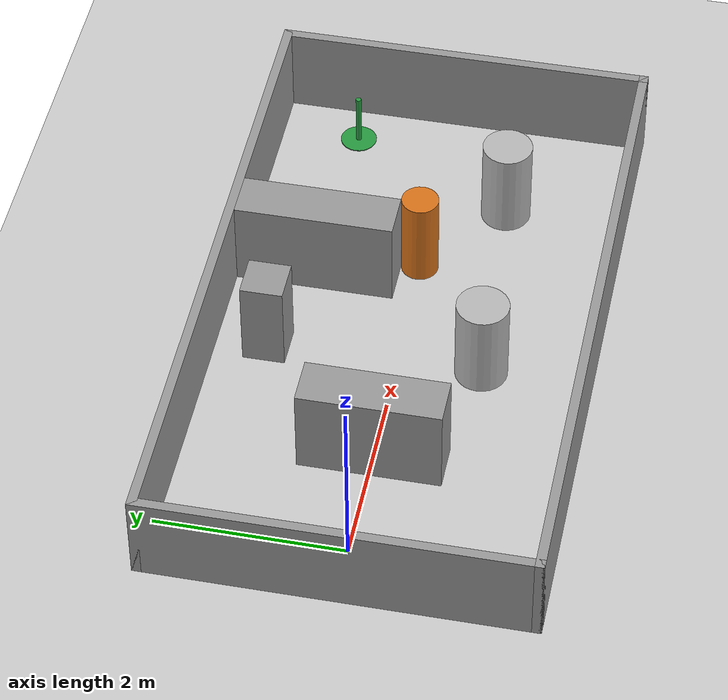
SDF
<sdf version="1.6">
 <world name="default">
  <light name="sun" type="directional">
   <pose>0 0 10 0 -0 0</pose>
   <diffuse>0.8 0.8 0.8 1</diffuse>
   <specular>0.1 0.1 0.1 1</specular>
   <attenuation>
    <range>1000</range>
    <constant>0.9</constant>
    <linear>0.01</linear>
    <quadratic>0.001</quadratic>
   </attenuation>
   <direction>-0.5 0.5 -1</direction>
  </light>
  <model name="ground_plane">
   <static>1</static>
   <link name="link">
    <collision name="collision">
     <geometry><plane><normal>0 0 1</normal><size>100 100</size></plane></geometry>
     <surface><friction><ode><mu>100</mu><mu2>50</mu2></ode></friction></surface>
    </collision>
    <visual name="visual">
     <cast_shadows>0</cast_shadows>
     <geometry><plane><normal>0 0 1</normal><size>100 100</size></plane></geometry>
     <material>
      <script><uri>file://media/materials/scripts/gazebo.material</uri><name>Gazebo/Grey</name></script>
     </material>
    </visual>
   </link>
  </model>
  <gravity>0 0 -9.8</gravity>
  <magnetic_field>6e-06 2.3e-05 -4.2e-05</magnetic_field>
  <atmosphere type="adiabatic"/>
  <physics name="default_physics" default="0" type="ode">
   <max_step_size>0.001</max_step_size>
   <real_time_factor>1</real_time_factor>
   <real_time_update_rate>1000</real_time_update_rate>
  </physics>
  <scene><ambient>0.4 0.4 0.4 1</ambient><background>0.7 0.7 0.7 1</background><shadows>1</shadows></scene>
  <spherical_coordinates>
   <surface_model>EARTH_WGS84</surface_model>
   <latitude_deg>0</latitude_deg>
   <longitude_deg>0</longitude_deg>
   <elevation>0</elevation>
   <heading_deg>0</heading_deg>
  </spherical_coordinates>
  <model name="wall_n">
   <static>1</static>
   <pose>2.9 2.0 0.5 0 0 0</pose>
   <link name="l">
    <collision name="c"><geometry><box><size>7.1 0.1 1.0</size></box></geometry></collision>
    <visual name="v">
     <geometry><box><size>7.1 0.1 1.0</size></box></geometry>
     <material><ambient>0.6 0.6 0.6 1</ambient><diffuse>0.6 0.6 0.6 1</diffuse></material>
    </visual>
   </link>
  </model>
  <model name="wall_s">
   <static>1</static>
   <pose>2.9 -2.0 0.5 0 0 0</pose>
   <link name="l">
    <collision name="c"><geometry><box><size>7.1 0.1 1.0</size></box></geometry></collision>
    <visual name="v">
     <geometry><box><size>7.1 0.1 1.0</size></box></geometry>
     <material><ambient>0.6 0.6 0.6 1</ambient><diffuse>0.6 0.6 0.6 1</diffuse></material>
    </visual>
   </link>
  </model>
  <model name="wall_w">
   <static>1</static>
   <pose>-0.6 0.0 0.5 0 0 0</pose>
   <link name="l">
    <collision name="c"><geometry><box><size>0.1 4.1 1.0</size></box></geometry></collision>
    <visual name="v">
     <geometry><box><size>0.1 4.1 1.0</size></box></geometry>
     <material><ambient>0.6 0.6 0.6 1</ambient><diffuse>0.6 0.6 0.6 1</diffuse></material>
    </visual>
   </link>
  </model>
  <model name="wall_e">
   <static>1</static>
   <pose>6.4 0.0 0.5 0 0 0</pose>
   <link name="l">
    <collision name="c"><geometry><box><size>0.1 4.1 1.0</size></box></geometry></collision>
    <visual name="v">
     <geometry><box><size>0.1 4.1 1.0</size></box></geometry>
     <material><ambient>0.6 0.6 0.6 1</ambient><diffuse>0.6 0.6 0.6 1</diffuse></material>
    </visual>
   </link>
  </model>
  <model name="long_box">
   <static>1</static>
   <pose>1.27 0.0 0.5 0 0 0</pose>
   <link name="l">
    <collision name="c"><geometry><box><size>0.5 1.5 1.0</size></box></geometry></collision>
    <visual name="v">
     <geometry><box><size>0.5 1.5 1.0</size></box></geometry>
     <material><ambient>0.6 0.6 0.6 1</ambient><diffuse>0.6 0.6 0.6 1</diffuse></material>
    </visual>
   </link>
  </model>
  <model name="small_box">
   <static>1</static>
   <pose>2.6 1.4 0.5 0 0 0</pose>
   <link name="l">
    <collision name="c"><geometry><box><size>0.45 0.45 1.0</size></box></geometry></collision>
    <visual name="v">
     <geometry><box><size>0.45 0.45 1.0</size></box></geometry>
     <material><ambient>0.6 0.6 0.6 1</ambient><diffuse>0.6 0.6 0.6 1</diffuse></material>
    </visual>
   </link>
  </model>
  <model name="divider">
   <static>1</static>
   <pose>3.77 1.1 0.5 0 0 0</pose>
   <link name="l">
    <collision name="c"><geometry><box><size>0.5 1.7 1.0</size></box></geometry></collision>
    <visual name="v">
     <geometry><box><size>0.5 1.7 1.0</size></box></geometry>
     <material><ambient>0.6 0.6 0.6 1</ambient><diffuse>0.6 0.6 0.6 1</diffuse></material>
    </visual>
   </link>
  </model>
  <model name="cyl_orange">
   <static>1</static>
   <pose>4.05 0.05 0.5 0 0 0</pose>
   <link name="l">
    <collision name="c">
     <geometry><cylinder><radius>0.2</radius><length>1.0</length></cylinder></geometry>
    </collision>
    <visual name="v">
     <geometry><cylinder><radius>0.2</radius><length>1.0</length></cylinder></geometry>
     <material><ambient>0.85 0.45 0.1 1</ambient><diffuse>0.85 0.45 0.1 1</diffuse></material>
    </visual>
   </link>
  </model>
  <model name="cyl_center">
   <static>1</static>
   <pose>2.65 -0.87 0.5 0 0 0</pose>
   <link name="l">
    <collision name="c">
     <geometry><cylinder><radius>0.28</radius><length>1.0</length></cylinder></geometry>
    </collision>
    <visual name="v">
     <geometry><cylinder><radius>0.28</radius><length>1.0</length></cylinder></geometry>
     <material><ambient>0.72 0.72 0.72 1</ambient><diffuse>0.72 0.72 0.72 1</diffuse></material>
    </visual>
   </link>
  </model>
  <model name="cyl_right">
   <static>1</static>
   <pose>5.04 -0.72 0.5 0 0 0</pose>
   <link name="l">
    <collision name="c">
     <geometry><cylinder><radius>0.27</radius><length>1.0</length></cylinder></geometry>
    </collision>
    <visual name="v">
     <geometry><cylinder><radius>0.27</radius><length>1.0</length></cylinder></geometry>
     <material><ambient>0.72 0.72 0.72 1</ambient><diffuse>0.72 0.72 0.72 1</diffuse></material>
    </visual>
   </link>
  </model>
  <model name="goal_marker">
   <static>1</static>
   <pose>5.9 1.1 0 0 0 0</pose>
   <link name="l">
    <visual name="pad">
     <pose>0 0 0.005 0 0 0</pose>
     <geometry><cylinder><radius>0.2</radius><length>0.01</length></cylinder></geometry>
     <material><ambient>0.15 0.6 0.25 1</ambient><diffuse>0.15 0.6 0.25 1</diffuse></material>
    </visual>
    <visual name="pole">
     <pose>0 0 0.3 0 0 0</pose>
     <geometry><cylinder><radius>0.03</radius><length>0.6</length></cylinder></geometry>
     <material><ambient>0.15 0.6 0.25 1</ambient><diffuse>0.15 0.6 0.25 1</diffuse></material>
    </visual>
   </link>
  </model>
 </world>
</sdf>
